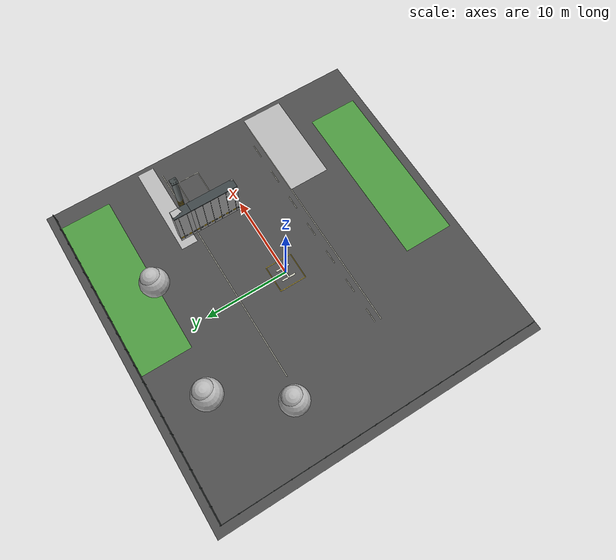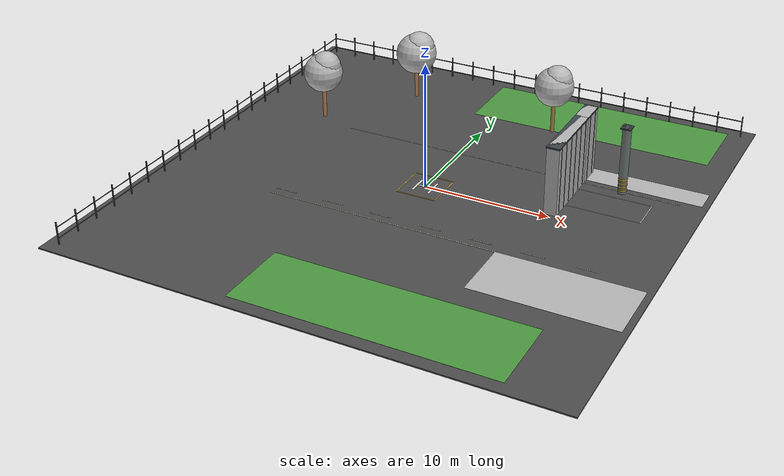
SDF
<sdf version="1.5">
 <world name="default">
  <include><uri>model://sun</uri></include>
  <model name="yard_ground">
   <static>true</static>
   <link name="structure">
    <visual name="solid_ground">
     <pose>0 0 -0.047 0 0 0</pose>
     <geometry><box><size>40 40 0.1</size></box></geometry>
     <material>
      <script>
       <uri>file:///home/fxxk/px4_agent/scene/materials/scripts</uri>
       <uri>file:///home/fxxk/px4_agent/scene/materials/textures</uri>
       <name>Yard/asphalt</name>
      </script>
     </material>
    </visual>
    <collision name="solid_ground_collision">
     <pose>0 0 -0.047 0 0 0</pose>
     <geometry><box><size>40 40 0.1</size></box></geometry>
     <surface><friction><ode><mu>1.0</mu><mu2>1.0</mu2></ode></friction></surface>
    </collision>
    <visual name="west_lawn">
     <pose>-12.5 0 0.0032 0 0 0</pose>
     <geometry><plane><normal>0 0 1</normal><size>15 38</size></plane></geometry>
     <cast_shadows>false</cast_shadows>
     <material>
      <script>
       <uri>file:///home/fxxk/px4_agent/scene/materials/scripts</uri>
       <uri>file:///home/fxxk/px4_agent/scene/materials/textures</uri>
       <name>Yard/grass</name>
      </script>
     </material>
    </visual>
    <visual name="north_lawn">
     <pose>8 16 0.0032 0 0 0</pose>
     <geometry><plane><normal>0 0 1</normal><size>20 6</size></plane></geometry>
     <cast_shadows>false</cast_shadows>
     <material>
      <script>
       <uri>file:///home/fxxk/px4_agent/scene/materials/scripts</uri>
       <uri>file:///home/fxxk/px4_agent/scene/materials/textures</uri>
       <name>Yard/grass</name>
      </script>
     </material>
    </visual>
    <visual name="south_lawn">
     <pose>5 -16 0.0032 0 0 0</pose>
     <geometry><plane><normal>0 0 1</normal><size>20 6</size></plane></geometry>
     <cast_shadows>false</cast_shadows>
     <material>
      <script>
       <uri>file:///home/fxxk/px4_agent/scene/materials/scripts</uri>
       <uri>file:///home/fxxk/px4_agent/scene/materials/textures</uri>
       <name>Yard/grass</name>
      </script>
     </material>
    </visual>
    <visual name="warehouse_apron">
     <pose>14 -8.5 0.0032 0 0 0</pose>
     <geometry><plane><normal>0 0 1</normal><size>11 5</size></plane></geometry>
     <cast_shadows>false</cast_shadows>
     <material>
      <script>
       <uri>file:///home/fxxk/px4_agent/scene/materials/scripts</uri>
       <uri>file:///home/fxxk/px4_agent/scene/materials/textures</uri>
       <name>Yard/concrete</name>
      </script>
     </material>
    </visual>
    <visual name="office_walkway">
     <pose>14 7.5 0.0032 0 0 0</pose>
     <geometry><plane><normal>0 0 1</normal><size>11 2</size></plane></geometry>
     <cast_shadows>false</cast_shadows>
     <material>
      <script>
       <uri>file:///home/fxxk/px4_agent/scene/materials/scripts</uri>
       <uri>file:///home/fxxk/px4_agent/scene/materials/textures</uri>
       <name>Yard/concrete</name>
      </script>
     </material>
    </visual>
    <visual name="road_edge_0">
     <pose>4 -6 0.0033 0 0 0</pose>
     <geometry><box><size>28 0.1 0.0001</size></box></geometry>
     <cast_shadows>false</cast_shadows>
     <material>
      <ambient>0.85 0.85 0.79 1</ambient>
      <diffuse>0.85 0.85 0.79 1</diffuse>
      <specular>0.04 0.04 0.04 1</specular>
     </material>
    </visual>
    <visual name="road_edge_1">
     <pose>4 6 0.0033 0 0 0</pose>
     <geometry><box><size>28 0.1 0.0001</size></box></geometry>
     <cast_shadows>false</cast_shadows>
     <material>
      <ambient>0.85 0.85 0.79 1</ambient>
      <diffuse>0.85 0.85 0.79 1</diffuse>
      <specular>0.04 0.04 0.04 1</specular>
     </material>
    </visual>
    <visual name="lane_dash_0">
     <pose>-9 -5.25 0.0033 0 0 0</pose>
     <geometry><box><size>1.8 0.09 0.0001</size></box></geometry>
     <cast_shadows>false</cast_shadows>
     <material>
      <ambient>0.85 0.85 0.79 1</ambient>
      <diffuse>0.85 0.85 0.79 1</diffuse>
      <specular>0.04 0.04 0.04 1</specular>
     </material>
    </visual>
    <visual name="lane_dash_1">
     <pose>-5 -5.25 0.0033 0 0 0</pose>
     <geometry><box><size>1.8 0.09 0.0001</size></box></geometry>
     <cast_shadows>false</cast_shadows>
     <material>
      <ambient>0.85 0.85 0.79 1</ambient>
      <diffuse>0.85 0.85 0.79 1</diffuse>
      <specular>0.04 0.04 0.04 1</specular>
     </material>
    </visual>
    <visual name="lane_dash_2">
     <pose>-1 -5.25 0.0033 0 0 0</pose>
     <geometry><box><size>1.8 0.09 0.0001</size></box></geometry>
     <cast_shadows>false</cast_shadows>
     <material>
      <ambient>0.85 0.85 0.79 1</ambient>
      <diffuse>0.85 0.85 0.79 1</diffuse>
      <specular>0.04 0.04 0.04 1</specular>
     </material>
    </visual>
    <visual name="lane_dash_3">
     <pose>3 -5.25 0.0033 0 0 0</pose>
     <geometry><box><size>1.8 0.09 0.0001</size></box></geometry>
     <cast_shadows>false</cast_shadows>
     <material>
      <ambient>0.85 0.85 0.79 1</ambient>
      <diffuse>0.85 0.85 0.79 1</diffuse>
      <specular>0.04 0.04 0.04 1</specular>
     </material>
    </visual>
    <visual name="lane_dash_4">
     <pose>7 -5.25 0.0033 0 0 0</pose>
     <geometry><box><size>1.8 0.09 0.0001</size></box></geometry>
     <cast_shadows>false</cast_shadows>
     <material>
      <ambient>0.85 0.85 0.79 1</ambient>
      <diffuse>0.85 0.85 0.79 1</diffuse>
      <specular>0.04 0.04 0.04 1</specular>
     </material>
    </visual>
    <visual name="lane_dash_5">
     <pose>11 -5.25 0.0033 0 0 0</pose>
     <geometry><box><size>1.8 0.09 0.0001</size></box></geometry>
     <cast_shadows>false</cast_shadows>
     <material>
      <ambient>0.85 0.85 0.79 1</ambient>
      <diffuse>0.85 0.85 0.79 1</diffuse>
      <specular>0.04 0.04 0.04 1</specular>
     </material>
    </visual>
    <visual name="lane_dash_6">
     <pose>15 -5.25 0.0033 0 0 0</pose>
     <geometry><box><size>1.8 0.09 0.0001</size></box></geometry>
     <cast_shadows>false</cast_shadows>
     <material>
      <ambient>0.85 0.85 0.79 1</ambient>
      <diffuse>0.85 0.85 0.79 1</diffuse>
      <specular>0.04 0.04 0.04 1</specular>
     </material>
    </visual>
    <visual name="parking_line_0">
     <pose>13 2.25 0.0033 0 0 0</pose>
     <geometry><box><size>6.4 0.07 0.0001</size></box></geometry>
     <cast_shadows>false</cast_shadows>
     <material>
      <ambient>0.85 0.85 0.79 1</ambient>
      <diffuse>0.85 0.85 0.79 1</diffuse>
      <specular>0.04 0.04 0.04 1</specular>
     </material>
    </visual>
    <visual name="parking_line_1">
     <pose>13 4.95 0.0033 0 0 0</pose>
     <geometry><box><size>6.4 0.07 0.0001</size></box></geometry>
     <cast_shadows>false</cast_shadows>
     <material>
      <ambient>0.85 0.85 0.79 1</ambient>
      <diffuse>0.85 0.85 0.79 1</diffuse>
      <specular>0.04 0.04 0.04 1</specular>
     </material>
    </visual>
    <visual name="parking_back">
     <pose>16.2 3.6 0.0033 0 0 0</pose>
     <geometry><box><size>0.07 2.77 0.0001</size></box></geometry>
     <cast_shadows>false</cast_shadows>
     <material>
      <ambient>0.85 0.85 0.79 1</ambient>
      <diffuse>0.85 0.85 0.79 1</diffuse>
      <specular>0.04 0.04 0.04 1</specular>
     </material>
    </visual>
    <visual name="h_left">
     <pose>-0.65 0 0.0033 0 0 0</pose>
     <geometry><box><size>0.18 1.7 0.0001</size></box></geometry>
     <cast_shadows>false</cast_shadows>
     <material>
      <ambient>0.85 0.85 0.79 1</ambient>
      <diffuse>0.85 0.85 0.79 1</diffuse>
      <specular>0.04 0.04 0.04 1</specular>
     </material>
    </visual>
    <visual name="h_right">
     <pose>0.65 0 0.0033 0 0 0</pose>
     <geometry><box><size>0.18 1.7 0.0001</size></box></geometry>
     <cast_shadows>false</cast_shadows>
     <material>
      <ambient>0.85 0.85 0.79 1</ambient>
      <diffuse>0.85 0.85 0.79 1</diffuse>
      <specular>0.04 0.04 0.04 1</specular>
     </material>
    </visual>
    <visual name="h_middle">
     <pose>0 0 0.0033 0 0 0</pose>
     <geometry><box><size>1.4 0.18 0.0001</size></box></geometry>
     <cast_shadows>false</cast_shadows>
     <material>
      <ambient>0.85 0.85 0.79 1</ambient>
      <diffuse>0.85 0.85 0.79 1</diffuse>
      <specular>0.04 0.04 0.04 1</specular>
     </material>
    </visual>
    <visual name="pad_border_0">
     <pose>0 -1.6 0.0033 0 0 0</pose>
     <geometry><box><size>3.2 0.08 0.0001</size></box></geometry>
     <cast_shadows>false</cast_shadows>
     <material>
      <ambient>0.82 0.7 0.18 1</ambient>
      <diffuse>0.82 0.7 0.18 1</diffuse>
      <specular>0.04 0.04 0.04 1</specular>
     </material>
    </visual>
    <visual name="pad_border_1">
     <pose>0 1.6 0.0033 0 0 0</pose>
     <geometry><box><size>3.2 0.08 0.0001</size></box></geometry>
     <cast_shadows>false</cast_shadows>
     <material>
      <ambient>0.82 0.7 0.18 1</ambient>
      <diffuse>0.82 0.7 0.18 1</diffuse>
      <specular>0.04 0.04 0.04 1</specular>
     </material>
    </visual>
    <visual name="pad_border_2">
     <pose>-1.6 0 0.0033 0 0 0</pose>
     <geometry><box><size>0.08 3.2 0.0001</size></box></geometry>
     <cast_shadows>false</cast_shadows>
     <material>
      <ambient>0.82 0.7 0.18 1</ambient>
      <diffuse>0.82 0.7 0.18 1</diffuse>
      <specular>0.04 0.04 0.04 1</specular>
     </material>
    </visual>
    <visual name="pad_border_3">
     <pose>1.6 0 0.0033 0 0 0</pose>
     <geometry><box><size>0.08 3.2 0.0001</size></box></geometry>
     <cast_shadows>false</cast_shadows>
     <material>
      <ambient>0.82 0.7 0.18 1</ambient>
      <diffuse>0.82 0.7 0.18 1</diffuse>
      <specular>0.04 0.04 0.04 1</specular>
     </material>
    </visual>
   </link>
  </model>
  <model name="obstacle_wall_2">
   <static>true</static>
   <pose>9.961 3.1725 0.003 0 0 0</pose>
   <link name="structure">
    <visual name="collision_wall">
     <pose>0 0 2.75 0 0 0</pose>
     <geometry><box><size>1 5.655 5.5</size></box></geometry>
     <material>
      <script>
       <uri>file:///home/fxxk/px4_agent/scene/materials/scripts</uri>
       <uri>file:///home/fxxk/px4_agent/scene/materials/textures</uri>
       <name>Yard/concrete</name>
      </script>
     </material>
    </visual>
    <collision name="collision_wall_collision">
     <pose>0 0 2.75 0 0 0</pose>
     <geometry><box><size>1 5.655 5.5</size></box></geometry>
     <surface><friction><ode><mu>1.0</mu><mu2>1.0</mu2></ode></friction></surface>
    </collision>
    <visual name="wall_coping">
     <pose>0 0 5.435 0 0 0</pose>
     <geometry><box><size>1.06 5.71155 0.13</size></box></geometry>
     <material>
      <ambient>0.24 0.27 0.28 1</ambient>
      <diffuse>0.24 0.27 0.28 1</diffuse>
      <specular>0.04 0.04 0.04 1</specular>
     </material>
    </visual>
    <visual name="panel_joint_-1_0">
     <pose>-0.513 -2.35625 2.75 0 0 0</pose>
     <geometry><box><size>0.028 0.032045 5.3</size></box></geometry>
     <material>
      <ambient>0.26 0.29 0.29 1</ambient>
      <diffuse>0.26 0.29 0.29 1</diffuse>
      <specular>0.04 0.04 0.04 1</specular>
     </material>
    </visual>
    <visual name="panel_joint_1_0">
     <pose>0.513 -2.35625 2.75 0 0 0</pose>
     <geometry><box><size>0.028 0.032045 5.3</size></box></geometry>
     <material>
      <ambient>0.26 0.29 0.29 1</ambient>
      <diffuse>0.26 0.29 0.29 1</diffuse>
      <specular>0.04 0.04 0.04 1</specular>
     </material>
    </visual>
    <visual name="panel_joint_-1_1">
     <pose>-0.513 -1.41375 2.75 0 0 0</pose>
     <geometry><box><size>0.028 0.032045 5.3</size></box></geometry>
     <material>
      <ambient>0.26 0.29 0.29 1</ambient>
      <diffuse>0.26 0.29 0.29 1</diffuse>
      <specular>0.04 0.04 0.04 1</specular>
     </material>
    </visual>
    <visual name="panel_joint_1_1">
     <pose>0.513 -1.41375 2.75 0 0 0</pose>
     <geometry><box><size>0.028 0.032045 5.3</size></box></geometry>
     <material>
      <ambient>0.26 0.29 0.29 1</ambient>
      <diffuse>0.26 0.29 0.29 1</diffuse>
      <specular>0.04 0.04 0.04 1</specular>
     </material>
    </visual>
    <visual name="panel_joint_-1_2">
     <pose>-0.513 -0.47125 2.75 0 0 0</pose>
     <geometry><box><size>0.028 0.032045 5.3</size></box></geometry>
     <material>
      <ambient>0.26 0.29 0.29 1</ambient>
      <diffuse>0.26 0.29 0.29 1</diffuse>
      <specular>0.04 0.04 0.04 1</specular>
     </material>
    </visual>
    <visual name="panel_joint_1_2">
     <pose>0.513 -0.47125 2.75 0 0 0</pose>
     <geometry><box><size>0.028 0.032045 5.3</size></box></geometry>
     <material>
      <ambient>0.26 0.29 0.29 1</ambient>
      <diffuse>0.26 0.29 0.29 1</diffuse>
      <specular>0.04 0.04 0.04 1</specular>
     </material>
    </visual>
    <visual name="panel_joint_-1_3">
     <pose>-0.513 0.47125 2.75 0 0 0</pose>
     <geometry><box><size>0.028 0.032045 5.3</size></box></geometry>
     <material>
      <ambient>0.26 0.29 0.29 1</ambient>
      <diffuse>0.26 0.29 0.29 1</diffuse>
      <specular>0.04 0.04 0.04 1</specular>
     </material>
    </visual>
    <visual name="panel_joint_1_3">
     <pose>0.513 0.47125 2.75 0 0 0</pose>
     <geometry><box><size>0.028 0.032045 5.3</size></box></geometry>
     <material>
      <ambient>0.26 0.29 0.29 1</ambient>
      <diffuse>0.26 0.29 0.29 1</diffuse>
      <specular>0.04 0.04 0.04 1</specular>
     </material>
    </visual>
    <visual name="panel_joint_-1_4">
     <pose>-0.513 1.41375 2.75 0 0 0</pose>
     <geometry><box><size>0.028 0.032045 5.3</size></box></geometry>
     <material>
      <ambient>0.26 0.29 0.29 1</ambient>
      <diffuse>0.26 0.29 0.29 1</diffuse>
      <specular>0.04 0.04 0.04 1</specular>
     </material>
    </visual>
    <visual name="panel_joint_1_4">
     <pose>0.513 1.41375 2.75 0 0 0</pose>
     <geometry><box><size>0.028 0.032045 5.3</size></box></geometry>
     <material>
      <ambient>0.26 0.29 0.29 1</ambient>
      <diffuse>0.26 0.29 0.29 1</diffuse>
      <specular>0.04 0.04 0.04 1</specular>
     </material>
    </visual>
    <visual name="panel_joint_-1_5">
     <pose>-0.513 2.35625 2.75 0 0 0</pose>
     <geometry><box><size>0.028 0.032045 5.3</size></box></geometry>
     <material>
      <ambient>0.26 0.29 0.29 1</ambient>
      <diffuse>0.26 0.29 0.29 1</diffuse>
      <specular>0.04 0.04 0.04 1</specular>
     </material>
    </visual>
    <visual name="panel_joint_1_5">
     <pose>0.513 2.35625 2.75 0 0 0</pose>
     <geometry><box><size>0.028 0.032045 5.3</size></box></geometry>
     <material>
      <ambient>0.26 0.29 0.29 1</ambient>
      <diffuse>0.26 0.29 0.29 1</diffuse>
      <specular>0.04 0.04 0.04 1</specular>
     </material>
    </visual>
    <visual name="safety_band_0">
     <pose>-0.517 -2.591875 0.65 0 0 0</pose>
     <geometry><box><size>0.025 0.32045 0.28</size></box></geometry>
     <material>
      <ambient>0.075 0.085 0.085 1</ambient>
      <diffuse>0.075 0.085 0.085 1</diffuse>
      <specular>0.04 0.04 0.04 1</specular>
     </material>
    </visual>
    <visual name="safety_band_1">
     <pose>-0.517 -2.120625 0.65 0 0 0</pose>
     <geometry><box><size>0.025 0.32045 0.28</size></box></geometry>
     <material>
      <ambient>0.78 0.64 0.1 1</ambient>
      <diffuse>0.78 0.64 0.1 1</diffuse>
      <specular>0.04 0.04 0.04 1</specular>
     </material>
    </visual>
    <visual name="safety_band_2">
     <pose>-0.517 -1.649375 0.65 0 0 0</pose>
     <geometry><box><size>0.025 0.32045 0.28</size></box></geometry>
     <material>
      <ambient>0.075 0.085 0.085 1</ambient>
      <diffuse>0.075 0.085 0.085 1</diffuse>
      <specular>0.04 0.04 0.04 1</specular>
     </material>
    </visual>
    <visual name="safety_band_3">
     <pose>-0.517 -1.178125 0.65 0 0 0</pose>
     <geometry><box><size>0.025 0.32045 0.28</size></box></geometry>
     <material>
      <ambient>0.78 0.64 0.1 1</ambient>
      <diffuse>0.78 0.64 0.1 1</diffuse>
      <specular>0.04 0.04 0.04 1</specular>
     </material>
    </visual>
    <visual name="safety_band_4">
     <pose>-0.517 -0.706875 0.65 0 0 0</pose>
     <geometry><box><size>0.025 0.32045 0.28</size></box></geometry>
     <material>
      <ambient>0.075 0.085 0.085 1</ambient>
      <diffuse>0.075 0.085 0.085 1</diffuse>
      <specular>0.04 0.04 0.04 1</specular>
     </material>
    </visual>
    <visual name="safety_band_5">
     <pose>-0.517 -0.235625 0.65 0 0 0</pose>
     <geometry><box><size>0.025 0.32045 0.28</size></box></geometry>
     <material>
      <ambient>0.78 0.64 0.1 1</ambient>
      <diffuse>0.78 0.64 0.1 1</diffuse>
      <specular>0.04 0.04 0.04 1</specular>
     </material>
    </visual>
    <visual name="safety_band_6">
     <pose>-0.517 0.235625 0.65 0 0 0</pose>
     <geometry><box><size>0.025 0.32045 0.28</size></box></geometry>
     <material>
      <ambient>0.075 0.085 0.085 1</ambient>
      <diffuse>0.075 0.085 0.085 1</diffuse>
      <specular>0.04 0.04 0.04 1</specular>
     </material>
    </visual>
    <visual name="safety_band_7">
     <pose>-0.517 0.706875 0.65 0 0 0</pose>
     <geometry><box><size>0.025 0.32045 0.28</size></box></geometry>
     <material>
      <ambient>0.78 0.64 0.1 1</ambient>
      <diffuse>0.78 0.64 0.1 1</diffuse>
      <specular>0.04 0.04 0.04 1</specular>
     </material>
    </visual>
    <visual name="safety_band_8">
     <pose>-0.517 1.178125 0.65 0 0 0</pose>
     <geometry><box><size>0.025 0.32045 0.28</size></box></geometry>
     <material>
      <ambient>0.075 0.085 0.085 1</ambient>
      <diffuse>0.075 0.085 0.085 1</diffuse>
      <specular>0.04 0.04 0.04 1</specular>
     </material>
    </visual>
    <visual name="safety_band_9">
     <pose>-0.517 1.649375 0.65 0 0 0</pose>
     <geometry><box><size>0.025 0.32045 0.28</size></box></geometry>
     <material>
      <ambient>0.78 0.64 0.1 1</ambient>
      <diffuse>0.78 0.64 0.1 1</diffuse>
      <specular>0.04 0.04 0.04 1</specular>
     </material>
    </visual>
    <visual name="safety_band_10">
     <pose>-0.517 2.120625 0.65 0 0 0</pose>
     <geometry><box><size>0.025 0.32045 0.28</size></box></geometry>
     <material>
      <ambient>0.075 0.085 0.085 1</ambient>
      <diffuse>0.075 0.085 0.085 1</diffuse>
      <specular>0.04 0.04 0.04 1</specular>
     </material>
    </visual>
    <visual name="safety_band_11">
     <pose>-0.517 2.591875 0.65 0 0 0</pose>
     <geometry><box><size>0.025 0.32045 0.28</size></box></geometry>
     <material>
      <ambient>0.78 0.64 0.1 1</ambient>
      <diffuse>0.78 0.64 0.1 1</diffuse>
      <specular>0.04 0.04 0.04 1</specular>
     </material>
    </visual>
   </link>
  </model>
  <model name="north_boundary_cargo_stack">
   <static>true</static>
   <pose>9.961 7 0.003 0 0 0</pose>
   <link name="structure">
    <visual name="collision_wall">
     <pose>0 0 2.75 0 0 0</pose>
     <geometry><box><size>1 2 5.5</size></box></geometry>
     <material>
      <script>
       <uri>file:///home/fxxk/px4_agent/scene/materials/scripts</uri>
       <uri>file:///home/fxxk/px4_agent/scene/materials/textures</uri>
       <name>Yard/concrete</name>
      </script>
     </material>
    </visual>
    <collision name="collision_wall_collision">
     <pose>0 0 2.75 0 0 0</pose>
     <geometry><box><size>1 2 5.5</size></box></geometry>
     <surface><friction><ode><mu>1.0</mu><mu2>1.0</mu2></ode></friction></surface>
    </collision>
    <visual name="wall_coping">
     <pose>0 0 5.435 0 0 0</pose>
     <geometry><box><size>1.06 2.06 0.13</size></box></geometry>
     <material>
      <ambient>0.24 0.27 0.28 1</ambient>
      <diffuse>0.24 0.27 0.28 1</diffuse>
      <specular>0.04 0.04 0.04 1</specular>
     </material>
    </visual>
    <visual name="panel_joint_-1_0">
     <pose>-0.513 -0.5 2.75 0 0 0</pose>
     <geometry><box><size>0.028 0.034 5.3</size></box></geometry>
     <material>
      <ambient>0.26 0.29 0.29 1</ambient>
      <diffuse>0.26 0.29 0.29 1</diffuse>
      <specular>0.04 0.04 0.04 1</specular>
     </material>
    </visual>
    <visual name="panel_joint_1_0">
     <pose>0.513 -0.5 2.75 0 0 0</pose>
     <geometry><box><size>0.028 0.034 5.3</size></box></geometry>
     <material>
      <ambient>0.26 0.29 0.29 1</ambient>
      <diffuse>0.26 0.29 0.29 1</diffuse>
      <specular>0.04 0.04 0.04 1</specular>
     </material>
    </visual>
    <visual name="panel_joint_-1_1">
     <pose>-0.513 0.5 2.75 0 0 0</pose>
     <geometry><box><size>0.028 0.034 5.3</size></box></geometry>
     <material>
      <ambient>0.26 0.29 0.29 1</ambient>
      <diffuse>0.26 0.29 0.29 1</diffuse>
      <specular>0.04 0.04 0.04 1</specular>
     </material>
    </visual>
    <visual name="panel_joint_1_1">
     <pose>0.513 0.5 2.75 0 0 0</pose>
     <geometry><box><size>0.028 0.034 5.3</size></box></geometry>
     <material>
      <ambient>0.26 0.29 0.29 1</ambient>
      <diffuse>0.26 0.29 0.29 1</diffuse>
      <specular>0.04 0.04 0.04 1</specular>
     </material>
    </visual>
    <visual name="safety_band_0">
     <pose>-0.517 -0.75 0.65 0 0 0</pose>
     <geometry><box><size>0.025 0.34 0.28</size></box></geometry>
     <material>
      <ambient>0.075 0.085 0.085 1</ambient>
      <diffuse>0.075 0.085 0.085 1</diffuse>
      <specular>0.04 0.04 0.04 1</specular>
     </material>
    </visual>
    <visual name="safety_band_1">
     <pose>-0.517 -0.25 0.65 0 0 0</pose>
     <geometry><box><size>0.025 0.34 0.28</size></box></geometry>
     <material>
      <ambient>0.78 0.64 0.1 1</ambient>
      <diffuse>0.78 0.64 0.1 1</diffuse>
      <specular>0.04 0.04 0.04 1</specular>
     </material>
    </visual>
    <visual name="safety_band_2">
     <pose>-0.517 0.25 0.65 0 0 0</pose>
     <geometry><box><size>0.025 0.34 0.28</size></box></geometry>
     <material>
      <ambient>0.075 0.085 0.085 1</ambient>
      <diffuse>0.075 0.085 0.085 1</diffuse>
      <specular>0.04 0.04 0.04 1</specular>
     </material>
    </visual>
    <visual name="safety_band_3">
     <pose>-0.517 0.75 0.65 0 0 0</pose>
     <geometry><box><size>0.025 0.34 0.28</size></box></geometry>
     <material>
      <ambient>0.78 0.64 0.1 1</ambient>
      <diffuse>0.78 0.64 0.1 1</diffuse>
      <specular>0.04 0.04 0.04 1</specular>
     </material>
    </visual>
   </link>
  </model>
  <model name="utility_pillar_northeast">
   <static>true</static>
   <pose>13.53 5.874 0.003 0 0 0</pose>
   <link name="structure">
    <visual name="tall_pillar">
     <pose>0 0 2.75 0 0 0</pose>
     <geometry><cylinder><radius>0.34</radius><length>5.5</length></cylinder></geometry>
     <material>
      <ambient>0.43 0.46 0.46 1</ambient>
      <diffuse>0.43 0.46 0.46 1</diffuse>
      <specular>0.04 0.04 0.04 1</specular>
     </material>
    </visual>
    <collision name="tall_pillar_collision">
     <pose>0 0 2.75 0 0 0</pose>
     <geometry><cylinder><radius>0.34</radius><length>5.5</length></cylinder></geometry>
     <surface><friction><ode><mu>1.0</mu><mu2>1.0</mu2></ode></friction></surface>
    </collision>
    <visual name="top_cap">
     <pose>0 0 5.45 0 0 0</pose>
     <geometry><box><size>0.8 0.8 0.1</size></box></geometry>
     <material>
      <ambient>0.25 0.28 0.28 1</ambient>
      <diffuse>0.25 0.28 0.28 1</diffuse>
      <specular>0.04 0.04 0.04 1</specular>
     </material>
    </visual>
    <visual name="hazard_ring_0">
     <pose>0 0 0.3 0 0 0</pose>
     <geometry><cylinder><radius>0.345</radius><length>0.14</length></cylinder></geometry>
     <material>
      <ambient>0.8 0.66 0.14 1</ambient>
      <diffuse>0.8 0.66 0.14 1</diffuse>
      <specular>0.04 0.04 0.04 1</specular>
     </material>
    </visual>
    <visual name="hazard_ring_1">
     <pose>0 0 0.6 0 0 0</pose>
     <geometry><cylinder><radius>0.345</radius><length>0.14</length></cylinder></geometry>
     <material>
      <ambient>0.8 0.66 0.14 1</ambient>
      <diffuse>0.8 0.66 0.14 1</diffuse>
      <specular>0.04 0.04 0.04 1</specular>
     </material>
    </visual>
    <visual name="hazard_ring_2">
     <pose>0 0 0.9 0 0 0</pose>
     <geometry><cylinder><radius>0.345</radius><length>0.14</length></cylinder></geometry>
     <material>
      <ambient>0.8 0.66 0.14 1</ambient>
      <diffuse>0.8 0.66 0.14 1</diffuse>
      <specular>0.04 0.04 0.04 1</specular>
     </material>
    </visual>
    <visual name="hazard_ring_3">
     <pose>0 0 1.2 0 0 0</pose>
     <geometry><cylinder><radius>0.345</radius><length>0.14</length></cylinder></geometry>
     <material>
      <ambient>0.8 0.66 0.14 1</ambient>
      <diffuse>0.8 0.66 0.14 1</diffuse>
      <specular>0.04 0.04 0.04 1</specular>
     </material>
    </visual>
   </link>
  </model>
  <model name="yard_tree_2">
   <static>true</static>
   <pose>-13 7 0.003 0 0 0</pose>
   <link name="structure">
    <visual name="trunk">
     <pose>0 0 1.6 0 0 0</pose>
     <geometry><cylinder><radius>0.16</radius><length>3.2</length></cylinder></geometry>
     <material>
      <script>
       <uri>file:///home/fxxk/px4_agent/scene/materials/scripts</uri>
       <uri>file:///home/fxxk/px4_agent/scene/materials/textures</uri>
       <name>Yard/wood</name>
      </script>
     </material>
    </visual>
    <collision name="trunk_collision">
     <pose>0 0 1.6 0 0 0</pose>
     <geometry><cylinder><radius>0.16</radius><length>3.2</length></cylinder></geometry>
     <surface><friction><ode><mu>1.0</mu><mu2>1.0</mu2></ode></friction></surface>
    </collision>
    <visual name="crown">
     <pose>0 0 3.95 0 0 0</pose>
     <geometry><sphere><radius>1.6</radius></sphere></geometry>
     <material>
      <script>
       <uri>file:///home/fxxk/px4_agent/scene/materials/scripts</uri>
       <uri>file:///home/fxxk/px4_agent/scene/materials/textures</uri>
       <name>Yard/foliage</name>
      </script>
     </material>
    </visual>
    <collision name="crown_collision">
     <pose>0 0 3.95 0 0 0</pose>
     <geometry><sphere><radius>1.6</radius></sphere></geometry>
     <surface><friction><ode><mu>1.0</mu><mu2>1.0</mu2></ode></friction></surface>
    </collision>
    <visual name="crown_top">
     <pose>0.25 0.06 4.6 0 0 0</pose>
     <geometry><sphere><radius>1.2000000000000002</radius></sphere></geometry>
     <material>
      <script>
       <uri>file:///home/fxxk/px4_agent/scene/materials/scripts</uri>
       <uri>file:///home/fxxk/px4_agent/scene/materials/textures</uri>
       <name>Yard/foliage</name>
      </script>
     </material>
    </visual>
   </link>
  </model>
  <model name="yard_tree_3">
   <static>true</static>
   <pose>-8 14 0.003 0 0 0</pose>
   <link name="structure">
    <visual name="trunk">
     <pose>0 0 1.6 0 0 0</pose>
     <geometry><cylinder><radius>0.16</radius><length>3.2</length></cylinder></geometry>
     <material>
      <script>
       <uri>file:///home/fxxk/px4_agent/scene/materials/scripts</uri>
       <uri>file:///home/fxxk/px4_agent/scene/materials/textures</uri>
       <name>Yard/wood</name>
      </script>
     </material>
    </visual>
    <collision name="trunk_collision">
     <pose>0 0 1.6 0 0 0</pose>
     <geometry><cylinder><radius>0.16</radius><length>3.2</length></cylinder></geometry>
     <surface><friction><ode><mu>1.0</mu><mu2>1.0</mu2></ode></friction></surface>
    </collision>
    <visual name="crown">
     <pose>0 0 3.95 0 0 0</pose>
     <geometry><sphere><radius>1.7</radius></sphere></geometry>
     <material>
      <script>
       <uri>file:///home/fxxk/px4_agent/scene/materials/scripts</uri>
       <uri>file:///home/fxxk/px4_agent/scene/materials/textures</uri>
       <name>Yard/foliage</name>
      </script>
     </material>
    </visual>
    <collision name="crown_collision">
     <pose>0 0 3.95 0 0 0</pose>
     <geometry><sphere><radius>1.7</radius></sphere></geometry>
     <surface><friction><ode><mu>1.0</mu><mu2>1.0</mu2></ode></friction></surface>
    </collision>
    <visual name="crown_top">
     <pose>0.25 0.06 4.6 0 0 0</pose>
     <geometry><sphere><radius>1.275</radius></sphere></geometry>
     <material>
      <script>
       <uri>file:///home/fxxk/px4_agent/scene/materials/scripts</uri>
       <uri>file:///home/fxxk/px4_agent/scene/materials/textures</uri>
       <name>Yard/foliage</name>
      </script>
     </material>
    </visual>
   </link>
  </model>
  <model name="yard_tree_4">
   <static>true</static>
   <pose>5 13 0.003 0 0 0</pose>
   <link name="structure">
    <visual name="trunk">
     <pose>0 0 1.6 0 0 0</pose>
     <geometry><cylinder><radius>0.16</radius><length>3.2</length></cylinder></geometry>
     <material>
      <script>
       <uri>file:///home/fxxk/px4_agent/scene/materials/scripts</uri>
       <uri>file:///home/fxxk/px4_agent/scene/materials/textures</uri>
       <name>Yard/wood</name>
      </script>
     </material>
    </visual>
    <collision name="trunk_collision">
     <pose>0 0 1.6 0 0 0</pose>
     <geometry><cylinder><radius>0.16</radius><length>3.2</length></cylinder></geometry>
     <surface><friction><ode><mu>1.0</mu><mu2>1.0</mu2></ode></friction></surface>
    </collision>
    <visual name="crown">
     <pose>0 0 3.95 0 0 0</pose>
     <geometry><sphere><radius>1.6</radius></sphere></geometry>
     <material>
      <script>
       <uri>file:///home/fxxk/px4_agent/scene/materials/scripts</uri>
       <uri>file:///home/fxxk/px4_agent/scene/materials/textures</uri>
       <name>Yard/foliage</name>
      </script>
     </material>
    </visual>
    <collision name="crown_collision">
     <pose>0 0 3.95 0 0 0</pose>
     <geometry><sphere><radius>1.6</radius></sphere></geometry>
     <surface><friction><ode><mu>1.0</mu><mu2>1.0</mu2></ode></friction></surface>
    </collision>
    <visual name="crown_top">
     <pose>0.25 0.06 4.6 0 0 0</pose>
     <geometry><sphere><radius>1.2000000000000002</radius></sphere></geometry>
     <material>
      <script>
       <uri>file:///home/fxxk/px4_agent/scene/materials/scripts</uri>
       <uri>file:///home/fxxk/px4_agent/scene/materials/textures</uri>
       <name>Yard/foliage</name>
      </script>
     </material>
    </visual>
   </link>
  </model>
  <model name="north_fence">
   <static>true</static>
   <pose>0 19 0.003 0 0 0</pose>
   <link name="structure">
    <collision name="fence_collision">
     <pose>0 0 .9 0 0 0</pose>
     <geometry><box><size>38 0.12 1.8</size></box></geometry>
    </collision>
    <visual name="fence_post_0">
     <pose>-19 0 0.9 0 0 0</pose>
     <geometry><box><size>0.08 0.08 1.8</size></box></geometry>
     <material>
      <ambient>0.31 0.34 0.33 1</ambient>
      <diffuse>0.31 0.34 0.33 1</diffuse>
      <specular>0.04 0.04 0.04 1</specular>
     </material>
    </visual>
    <visual name="fence_post_1">
     <pose>-17 0 0.9 0 0 0</pose>
     <geometry><box><size>0.08 0.08 1.8</size></box></geometry>
     <material>
      <ambient>0.31 0.34 0.33 1</ambient>
      <diffuse>0.31 0.34 0.33 1</diffuse>
      <specular>0.04 0.04 0.04 1</specular>
     </material>
    </visual>
    <visual name="fence_post_2">
     <pose>-15 0 0.9 0 0 0</pose>
     <geometry><box><size>0.08 0.08 1.8</size></box></geometry>
     <material>
      <ambient>0.31 0.34 0.33 1</ambient>
      <diffuse>0.31 0.34 0.33 1</diffuse>
      <specular>0.04 0.04 0.04 1</specular>
     </material>
    </visual>
    <visual name="fence_post_3">
     <pose>-13 0 0.9 0 0 0</pose>
     <geometry><box><size>0.08 0.08 1.8</size></box></geometry>
     <material>
      <ambient>0.31 0.34 0.33 1</ambient>
      <diffuse>0.31 0.34 0.33 1</diffuse>
      <specular>0.04 0.04 0.04 1</specular>
     </material>
    </visual>
    <visual name="fence_post_4">
     <pose>-11 0 0.9 0 0 0</pose>
     <geometry><box><size>0.08 0.08 1.8</size></box></geometry>
     <material>
      <ambient>0.31 0.34 0.33 1</ambient>
      <diffuse>0.31 0.34 0.33 1</diffuse>
      <specular>0.04 0.04 0.04 1</specular>
     </material>
    </visual>
    <visual name="fence_post_5">
     <pose>-9 0 0.9 0 0 0</pose>
     <geometry><box><size>0.08 0.08 1.8</size></box></geometry>
     <material>
      <ambient>0.31 0.34 0.33 1</ambient>
      <diffuse>0.31 0.34 0.33 1</diffuse>
      <specular>0.04 0.04 0.04 1</specular>
     </material>
    </visual>
    <visual name="fence_post_6">
     <pose>-7 0 0.9 0 0 0</pose>
     <geometry><box><size>0.08 0.08 1.8</size></box></geometry>
     <material>
      <ambient>0.31 0.34 0.33 1</ambient>
      <diffuse>0.31 0.34 0.33 1</diffuse>
      <specular>0.04 0.04 0.04 1</specular>
     </material>
    </visual>
    <visual name="fence_post_7">
     <pose>-5 0 0.9 0 0 0</pose>
     <geometry><box><size>0.08 0.08 1.8</size></box></geometry>
     <material>
      <ambient>0.31 0.34 0.33 1</ambient>
      <diffuse>0.31 0.34 0.33 1</diffuse>
      <specular>0.04 0.04 0.04 1</specular>
     </material>
    </visual>
    <visual name="fence_post_8">
     <pose>-3 0 0.9 0 0 0</pose>
     <geometry><box><size>0.08 0.08 1.8</size></box></geometry>
     <material>
      <ambient>0.31 0.34 0.33 1</ambient>
      <diffuse>0.31 0.34 0.33 1</diffuse>
      <specular>0.04 0.04 0.04 1</specular>
     </material>
    </visual>
    <visual name="fence_post_9">
     <pose>-1 0 0.9 0 0 0</pose>
     <geometry><box><size>0.08 0.08 1.8</size></box></geometry>
     <material>
      <ambient>0.31 0.34 0.33 1</ambient>
      <diffuse>0.31 0.34 0.33 1</diffuse>
      <specular>0.04 0.04 0.04 1</specular>
     </material>
    </visual>
    <visual name="fence_post_10">
     <pose>1 0 0.9 0 0 0</pose>
     <geometry><box><size>0.08 0.08 1.8</size></box></geometry>
     <material>
      <ambient>0.31 0.34 0.33 1</ambient>
      <diffuse>0.31 0.34 0.33 1</diffuse>
      <specular>0.04 0.04 0.04 1</specular>
     </material>
    </visual>
    <visual name="fence_post_11">
     <pose>3 0 0.9 0 0 0</pose>
     <geometry><box><size>0.08 0.08 1.8</size></box></geometry>
     <material>
      <ambient>0.31 0.34 0.33 1</ambient>
      <diffuse>0.31 0.34 0.33 1</diffuse>
      <specular>0.04 0.04 0.04 1</specular>
     </material>
    </visual>
    <visual name="fence_post_12">
     <pose>5 0 0.9 0 0 0</pose>
     <geometry><box><size>0.08 0.08 1.8</size></box></geometry>
     <material>
      <ambient>0.31 0.34 0.33 1</ambient>
      <diffuse>0.31 0.34 0.33 1</diffuse>
      <specular>0.04 0.04 0.04 1</specular>
     </material>
    </visual>
    <visual name="fence_post_13">
     <pose>7 0 0.9 0 0 0</pose>
     <geometry><box><size>0.08 0.08 1.8</size></box></geometry>
     <material>
      <ambient>0.31 0.34 0.33 1</ambient>
      <diffuse>0.31 0.34 0.33 1</diffuse>
      <specular>0.04 0.04 0.04 1</specular>
     </material>
    </visual>
    <visual name="fence_post_14">
     <pose>9 0 0.9 0 0 0</pose>
     <geometry><box><size>0.08 0.08 1.8</size></box></geometry>
     <material>
      <ambient>0.31 0.34 0.33 1</ambient>
      <diffuse>0.31 0.34 0.33 1</diffuse>
      <specular>0.04 0.04 0.04 1</specular>
     </material>
    </visual>
    <visual name="fence_post_15">
     <pose>11 0 0.9 0 0 0</pose>
     <geometry><box><size>0.08 0.08 1.8</size></box></geometry>
     <material>
      <ambient>0.31 0.34 0.33 1</ambient>
      <diffuse>0.31 0.34 0.33 1</diffuse>
      <specular>0.04 0.04 0.04 1</specular>
     </material>
    </visual>
    <visual name="fence_post_16">
     <pose>13 0 0.9 0 0 0</pose>
     <geometry><box><size>0.08 0.08 1.8</size></box></geometry>
     <material>
      <ambient>0.31 0.34 0.33 1</ambient>
      <diffuse>0.31 0.34 0.33 1</diffuse>
      <specular>0.04 0.04 0.04 1</specular>
     </material>
    </visual>
    <visual name="fence_post_17">
     <pose>15 0 0.9 0 0 0</pose>
     <geometry><box><size>0.08 0.08 1.8</size></box></geometry>
     <material>
      <ambient>0.31 0.34 0.33 1</ambient>
      <diffuse>0.31 0.34 0.33 1</diffuse>
      <specular>0.04 0.04 0.04 1</specular>
     </material>
    </visual>
    <visual name="fence_post_18">
     <pose>17 0 0.9 0 0 0</pose>
     <geometry><box><size>0.08 0.08 1.8</size></box></geometry>
     <material>
      <ambient>0.31 0.34 0.33 1</ambient>
      <diffuse>0.31 0.34 0.33 1</diffuse>
      <specular>0.04 0.04 0.04 1</specular>
     </material>
    </visual>
    <visual name="fence_post_19">
     <pose>19 0 0.9 0 0 0</pose>
     <geometry><box><size>0.08 0.08 1.8</size></box></geometry>
     <material>
      <ambient>0.31 0.34 0.33 1</ambient>
      <diffuse>0.31 0.34 0.33 1</diffuse>
      <specular>0.04 0.04 0.04 1</specular>
     </material>
    </visual>
    <visual name="fence_rail_0">
     <pose>0 0 0.48 0 0 0</pose>
     <geometry><box><size>38 0.04 0.055</size></box></geometry>
     <material>
      <ambient>0.35 0.38 0.37 1</ambient>
      <diffuse>0.35 0.38 0.37 1</diffuse>
      <specular>0.04 0.04 0.04 1</specular>
     </material>
    </visual>
    <visual name="fence_rail_1">
     <pose>0 0 1.35 0 0 0</pose>
     <geometry><box><size>38 0.04 0.055</size></box></geometry>
     <material>
      <ambient>0.35 0.38 0.37 1</ambient>
      <diffuse>0.35 0.38 0.37 1</diffuse>
      <specular>0.04 0.04 0.04 1</specular>
     </material>
    </visual>
   </link>
  </model>
  <model name="west_fence">
   <static>true</static>
   <pose>-19 0 0.003 0 0 0</pose>
   <link name="structure">
    <collision name="fence_collision">
     <pose>0 0 .9 0 0 0</pose>
     <geometry><box><size>0.12 38 1.8</size></box></geometry>
    </collision>
    <visual name="fence_post_0">
     <pose>0 -19 0.9 0 0 0</pose>
     <geometry><box><size>0.08 0.08 1.8</size></box></geometry>
     <material>
      <ambient>0.31 0.34 0.33 1</ambient>
      <diffuse>0.31 0.34 0.33 1</diffuse>
      <specular>0.04 0.04 0.04 1</specular>
     </material>
    </visual>
    <visual name="fence_post_1">
     <pose>0 -17 0.9 0 0 0</pose>
     <geometry><box><size>0.08 0.08 1.8</size></box></geometry>
     <material>
      <ambient>0.31 0.34 0.33 1</ambient>
      <diffuse>0.31 0.34 0.33 1</diffuse>
      <specular>0.04 0.04 0.04 1</specular>
     </material>
    </visual>
    <visual name="fence_post_2">
     <pose>0 -15 0.9 0 0 0</pose>
     <geometry><box><size>0.08 0.08 1.8</size></box></geometry>
     <material>
      <ambient>0.31 0.34 0.33 1</ambient>
      <diffuse>0.31 0.34 0.33 1</diffuse>
      <specular>0.04 0.04 0.04 1</specular>
     </material>
    </visual>
    <visual name="fence_post_3">
     <pose>0 -13 0.9 0 0 0</pose>
     <geometry><box><size>0.08 0.08 1.8</size></box></geometry>
     <material>
      <ambient>0.31 0.34 0.33 1</ambient>
      <diffuse>0.31 0.34 0.33 1</diffuse>
      <specular>0.04 0.04 0.04 1</specular>
     </material>
    </visual>
    <visual name="fence_post_4">
     <pose>0 -11 0.9 0 0 0</pose>
     <geometry><box><size>0.08 0.08 1.8</size></box></geometry>
     <material>
      <ambient>0.31 0.34 0.33 1</ambient>
      <diffuse>0.31 0.34 0.33 1</diffuse>
      <specular>0.04 0.04 0.04 1</specular>
     </material>
    </visual>
    <visual name="fence_post_5">
     <pose>0 -9 0.9 0 0 0</pose>
     <geometry><box><size>0.08 0.08 1.8</size></box></geometry>
     <material>
      <ambient>0.31 0.34 0.33 1</ambient>
      <diffuse>0.31 0.34 0.33 1</diffuse>
      <specular>0.04 0.04 0.04 1</specular>
     </material>
    </visual>
    <visual name="fence_post_6">
     <pose>0 -7 0.9 0 0 0</pose>
     <geometry><box><size>0.08 0.08 1.8</size></box></geometry>
     <material>
      <ambient>0.31 0.34 0.33 1</ambient>
      <diffuse>0.31 0.34 0.33 1</diffuse>
      <specular>0.04 0.04 0.04 1</specular>
     </material>
    </visual>
    <visual name="fence_post_7">
     <pose>0 -5 0.9 0 0 0</pose>
     <geometry><box><size>0.08 0.08 1.8</size></box></geometry>
     <material>
      <ambient>0.31 0.34 0.33 1</ambient>
      <diffuse>0.31 0.34 0.33 1</diffuse>
      <specular>0.04 0.04 0.04 1</specular>
     </material>
    </visual>
    <visual name="fence_post_8">
     <pose>0 -3 0.9 0 0 0</pose>
     <geometry><box><size>0.08 0.08 1.8</size></box></geometry>
     <material>
      <ambient>0.31 0.34 0.33 1</ambient>
      <diffuse>0.31 0.34 0.33 1</diffuse>
      <specular>0.04 0.04 0.04 1</specular>
     </material>
    </visual>
    <visual name="fence_post_9">
     <pose>0 -1 0.9 0 0 0</pose>
     <geometry><box><size>0.08 0.08 1.8</size></box></geometry>
     <material>
      <ambient>0.31 0.34 0.33 1</ambient>
      <diffuse>0.31 0.34 0.33 1</diffuse>
      <specular>0.04 0.04 0.04 1</specular>
     </material>
    </visual>
    <visual name="fence_post_10">
     <pose>0 1 0.9 0 0 0</pose>
     <geometry><box><size>0.08 0.08 1.8</size></box></geometry>
     <material>
      <ambient>0.31 0.34 0.33 1</ambient>
      <diffuse>0.31 0.34 0.33 1</diffuse>
      <specular>0.04 0.04 0.04 1</specular>
     </material>
    </visual>
    <visual name="fence_post_11">
     <pose>0 3 0.9 0 0 0</pose>
     <geometry><box><size>0.08 0.08 1.8</size></box></geometry>
     <material>
      <ambient>0.31 0.34 0.33 1</ambient>
      <diffuse>0.31 0.34 0.33 1</diffuse>
      <specular>0.04 0.04 0.04 1</specular>
     </material>
    </visual>
    <visual name="fence_post_12">
     <pose>0 5 0.9 0 0 0</pose>
     <geometry><box><size>0.08 0.08 1.8</size></box></geometry>
     <material>
      <ambient>0.31 0.34 0.33 1</ambient>
      <diffuse>0.31 0.34 0.33 1</diffuse>
      <specular>0.04 0.04 0.04 1</specular>
     </material>
    </visual>
    <visual name="fence_post_13">
     <pose>0 7 0.9 0 0 0</pose>
     <geometry><box><size>0.08 0.08 1.8</size></box></geometry>
     <material>
      <ambient>0.31 0.34 0.33 1</ambient>
      <diffuse>0.31 0.34 0.33 1</diffuse>
      <specular>0.04 0.04 0.04 1</specular>
     </material>
    </visual>
    <visual name="fence_post_14">
     <pose>0 9 0.9 0 0 0</pose>
     <geometry><box><size>0.08 0.08 1.8</size></box></geometry>
     <material>
      <ambient>0.31 0.34 0.33 1</ambient>
      <diffuse>0.31 0.34 0.33 1</diffuse>
      <specular>0.04 0.04 0.04 1</specular>
     </material>
    </visual>
    <visual name="fence_post_15">
     <pose>0 11 0.9 0 0 0</pose>
     <geometry><box><size>0.08 0.08 1.8</size></box></geometry>
     <material>
      <ambient>0.31 0.34 0.33 1</ambient>
      <diffuse>0.31 0.34 0.33 1</diffuse>
      <specular>0.04 0.04 0.04 1</specular>
     </material>
    </visual>
    <visual name="fence_post_16">
     <pose>0 13 0.9 0 0 0</pose>
     <geometry><box><size>0.08 0.08 1.8</size></box></geometry>
     <material>
      <ambient>0.31 0.34 0.33 1</ambient>
      <diffuse>0.31 0.34 0.33 1</diffuse>
      <specular>0.04 0.04 0.04 1</specular>
     </material>
    </visual>
    <visual name="fence_post_17">
     <pose>0 15 0.9 0 0 0</pose>
     <geometry><box><size>0.08 0.08 1.8</size></box></geometry>
     <material>
      <ambient>0.31 0.34 0.33 1</ambient>
      <diffuse>0.31 0.34 0.33 1</diffuse>
      <specular>0.04 0.04 0.04 1</specular>
     </material>
    </visual>
    <visual name="fence_post_18">
     <pose>0 17 0.9 0 0 0</pose>
     <geometry><box><size>0.08 0.08 1.8</size></box></geometry>
     <material>
      <ambient>0.31 0.34 0.33 1</ambient>
      <diffuse>0.31 0.34 0.33 1</diffuse>
      <specular>0.04 0.04 0.04 1</specular>
     </material>
    </visual>
    <visual name="fence_post_19">
     <pose>0 19 0.9 0 0 0</pose>
     <geometry><box><size>0.08 0.08 1.8</size></box></geometry>
     <material>
      <ambient>0.31 0.34 0.33 1</ambient>
      <diffuse>0.31 0.34 0.33 1</diffuse>
      <specular>0.04 0.04 0.04 1</specular>
     </material>
    </visual>
    <visual name="fence_rail_0">
     <pose>0 0 0.48 0 0 0</pose>
     <geometry><box><size>0.04 38 0.055</size></box></geometry>
     <material>
      <ambient>0.35 0.38 0.37 1</ambient>
      <diffuse>0.35 0.38 0.37 1</diffuse>
      <specular>0.04 0.04 0.04 1</specular>
     </material>
    </visual>
    <visual name="fence_rail_1">
     <pose>0 0 1.35 0 0 0</pose>
     <geometry><box><size>0.04 38 0.055</size></box></geometry>
     <material>
      <ambient>0.35 0.38 0.37 1</ambient>
      <diffuse>0.35 0.38 0.37 1</diffuse>
      <specular>0.04 0.04 0.04 1</specular>
     </material>
    </visual>
   </link>
  </model>
 </world>
</sdf>
